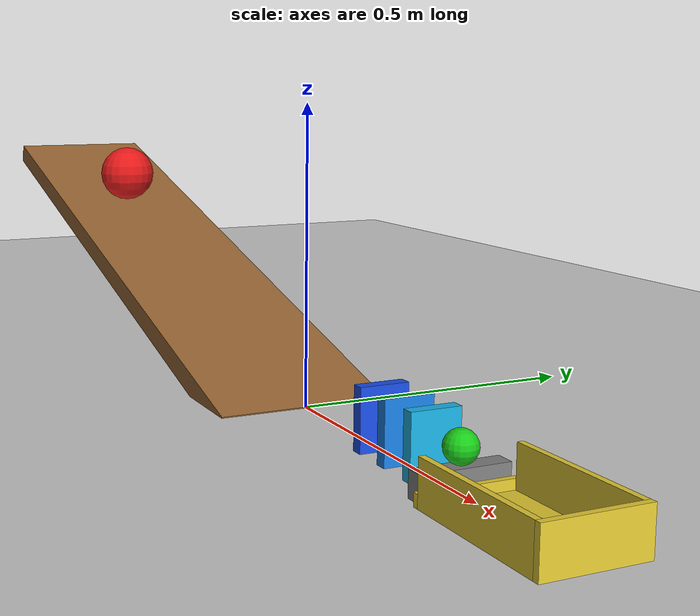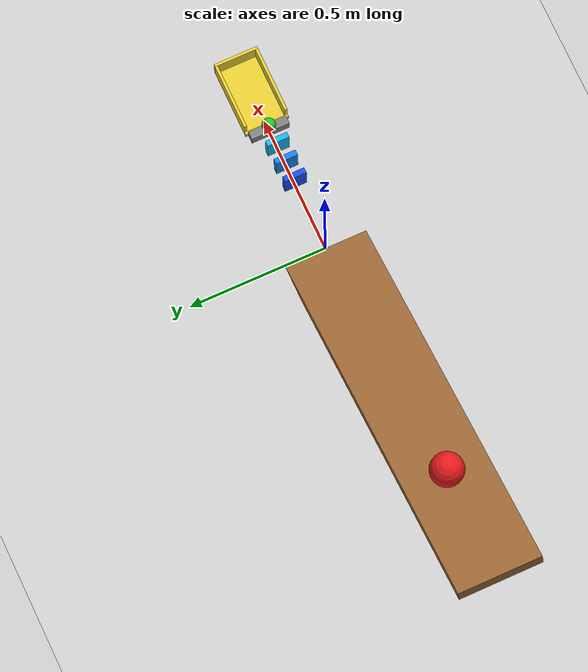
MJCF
<mujoco model="ramp_domino_cup">
  <option timestep="0.002"/>
  <worldbody>
    <light name="main_light" pos="0 0 2" dir="0 0 -1"/>
    <geom name="floor" type="plane" pos="0 0 0" size="3 3 0.1" rgba="0.8 0.8 0.8 1"/>

    <body name="ramp" pos="-0.6813 0 0.1619" euler="0 15 0">
      <geom name="ramp_plank" type="box" size="0.7 0.15 0.02" rgba="0.6 0.4 0.2 1"/>
    </body>

    <body name="ball1" pos="-0.9504 0 0.3170">
      <freejoint name="ball1_free"/>
      <geom name="ball1_geom" type="sphere" size="0.06" density="150" condim="6" friction="0.8 0.005 0.005" rgba="0.9 0.1 0.1 1"/>
    </body>

    <body name="d1" pos="0.25 0 0.05">
      <freejoint name="d1_free"/>
      <geom name="d1_geom" type="box" size="0.01 0.04 0.05" density="600" rgba="0.1 0.3 0.9 1"/>
    </body>

    <body name="d2" pos="0.32 0 0.05">
      <freejoint name="d2_free"/>
      <geom name="d2_geom" type="box" size="0.01 0.04 0.05" density="600" rgba="0.1 0.5 0.9 1"/>
    </body>

    <body name="d3" pos="0.39 0 0.05">
      <freejoint name="d3_free"/>
      <geom name="d3_geom" type="box" size="0.01 0.04 0.05" density="600" friction="0.3 0.005 0.0001" rgba="0.1 0.7 0.9 1"/>
    </body>

    <body name="step" pos="0.46 0 0.02">
      <geom name="step_block" type="box" size="0.015 0.07 0.02" friction="0.3 0.005 0.0001" rgba="0.5 0.5 0.5 1"/>
    </body>

    <body name="ball2" pos="0.46 0 0.0651">
      <freejoint name="ball2_free"/>
      <geom name="ball2_geom" type="sphere" size="0.025" density="300" condim="6" friction="0.3 0.005 0.002" rgba="0.1 0.8 0.1 1"/>
    </body>

    <body name="cup" pos="0 0 0">
      <geom name="cup_base" type="box" pos="0.605 0 0.002" size="0.12 0.07 0.002" rgba="0.9 0.8 0.2 1"/>
      <geom name="cup_near_wall" type="box" pos="0.48 0 0.01" size="0.005 0.08 0.01" rgba="0.9 0.8 0.2 1"/>
      <geom name="cup_far_wall" type="box" pos="0.73 0 0.035" size="0.005 0.08 0.035" rgba="0.9 0.8 0.2 1"/>
      <geom name="cup_left_wall" type="box" pos="0.605 0.075 0.035" size="0.12 0.005 0.035" rgba="0.9 0.8 0.2 1"/>
      <geom name="cup_right_wall" type="box" pos="0.605 -0.075 0.035" size="0.12 0.005 0.035" rgba="0.9 0.8 0.2 1"/>
    </body>
  </worldbody>
</mujoco>
